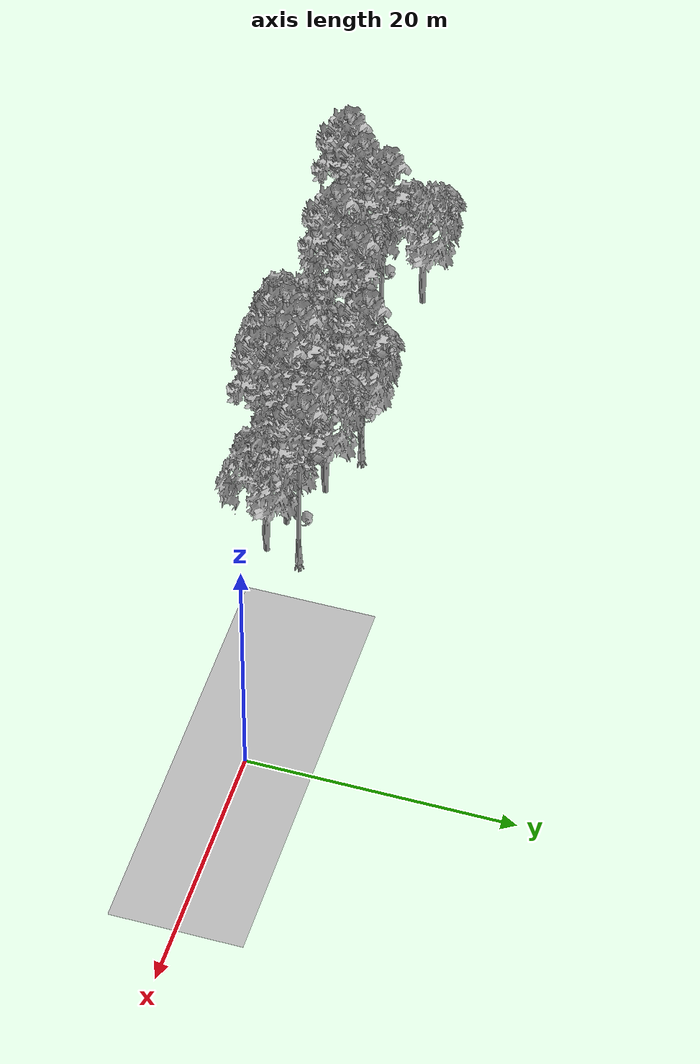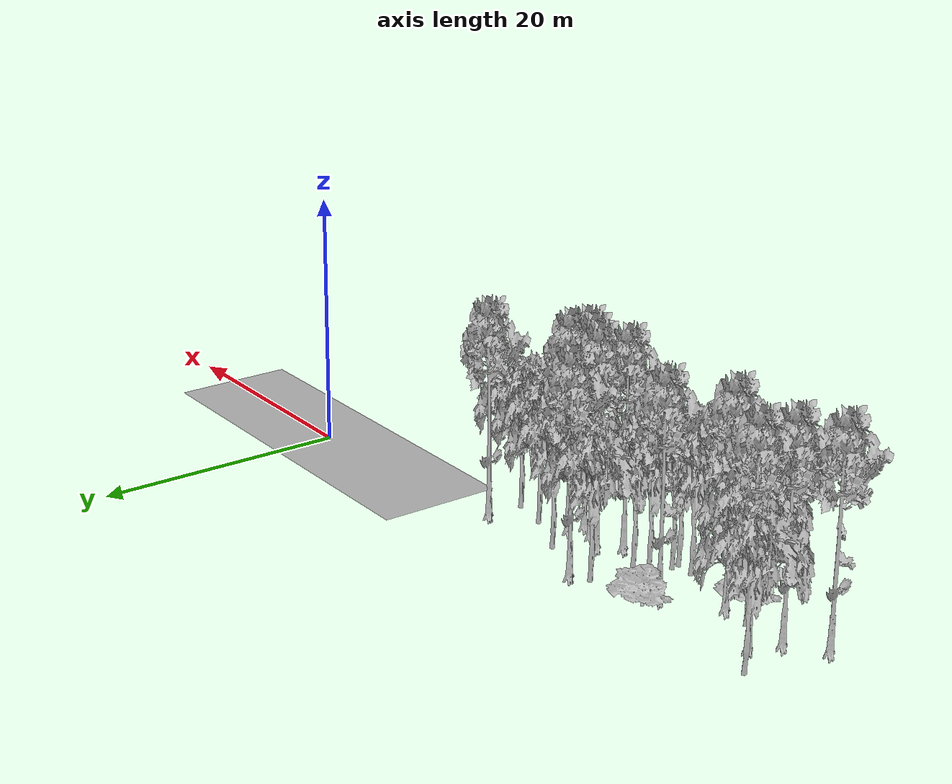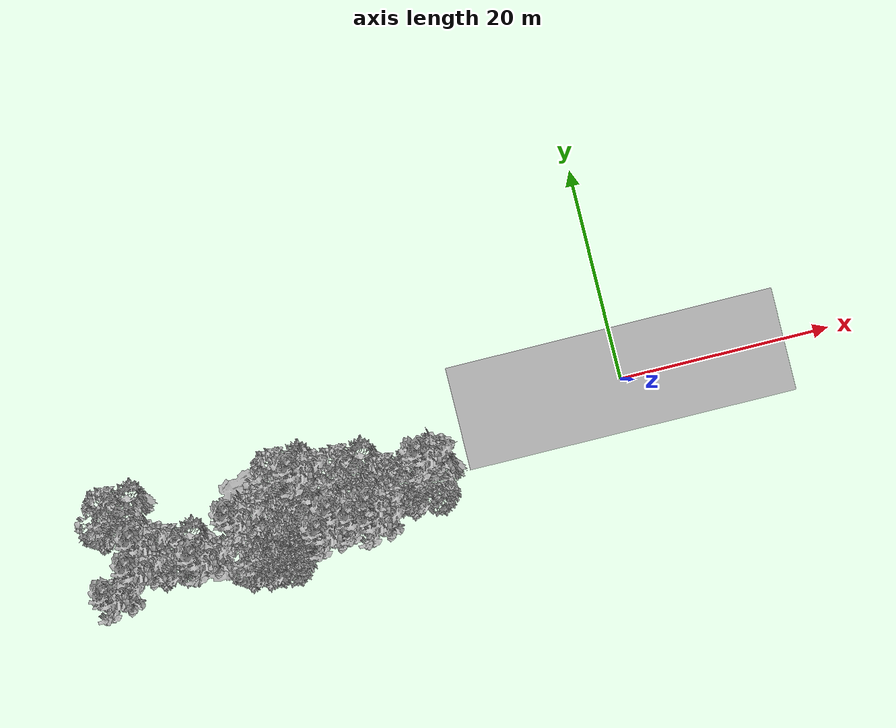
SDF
<sdf version="1.7">
 <world name="default">
  <model name="ground_plane">
   <static>1</static>
   <link name="link">
    <collision name="collision">
     <pose>-50 0 0 0 -0 0</pose>
     <geometry><plane><normal>0 0 1</normal><size>100 100</size></plane></geometry>
     <surface><contact><ode><min_depth>0.01</min_depth><max_vel>0</max_vel></ode></contact></surface>
    </collision>
    <visual name="grass">
     <cast_shadows>0</cast_shadows>
     <geometry>
      <mesh>
       <scale>0.5814285714285714 0.18142857142857144 0.1</scale>
       <uri>file://grass_plane/meshes/grass_plane.dae</uri>
      </mesh>
     </geometry>
    </visual>
   </link>
  </model>
  <model name="Tree 20">
   <static>1</static>
   <pose>-24.720509356675365 -6.560467251138821 0 1.57079 -0 0</pose>
   <link name="link">
    <collision name="collision">
     <geometry><mesh><scale>3.5 5 3.5</scale><uri>model://tree_9/meshes/tree_9.obj</uri></mesh></geometry>
    </collision>
    <visual name="visual">
     <geometry><mesh><scale>3.5 5 3.5</scale><uri>model://tree_9/meshes/tree_9.obj</uri></mesh></geometry>
    </visual>
   </link>
  </model>
  <model name="Tree 30">
   <static>1</static>
   <pose>-36.678549349047785 -1.8676654254299443 0 1.57079 -0 0</pose>
   <link name="link">
    <collision name="collision">
     <geometry><mesh><scale>3 2 3</scale><uri>model://tree_3/meshes/tree_3.obj</uri></mesh></geometry>
    </collision>
    <visual name="visual">
     <geometry><mesh><scale>3 2 3</scale><uri>model://tree_3/meshes/tree_3.obj</uri></mesh></geometry>
    </visual>
   </link>
  </model>
  <model name="Tree 61">
   <static>1</static>
   <pose>-32.130623377015894 -1.154115516390199 0 1.57079 -0 0</pose>
   <link name="link">
    <collision name="collision">
     <geometry><mesh><scale>3.5 5 3.5</scale><uri>model://tree_2/meshes/tree_2.obj</uri></mesh></geometry>
    </collision>
    <visual name="visual">
     <geometry><mesh><scale>3.5 5 3.5</scale><uri>model://tree_2/meshes/tree_2.obj</uri></mesh></geometry>
    </visual>
   </link>
  </model>
  <model name="Tree 68">
   <static>1</static>
   <pose>-45.25607261044431 -3.4985982505769524 0 1.57079 -0 0</pose>
   <link name="link">
    <collision name="collision">
     <geometry><mesh><scale>3.5 5 3.5</scale><uri>model://tree_9/meshes/tree_9.obj</uri></mesh></geometry>
    </collision>
    <visual name="visual">
     <geometry><mesh><scale>3.5 5 3.5</scale><uri>model://tree_9/meshes/tree_9.obj</uri></mesh></geometry>
    </visual>
   </link>
  </model>
  <model name="Tree 71">
   <static>1</static>
   <pose>-33.88990737447455 -7.730477515584562 0 1.57079 -0 0</pose>
   <link name="link">
    <collision name="collision">
     <geometry><mesh><scale>3.5 5 3.5</scale><uri>model://tree_2/meshes/tree_2.obj</uri></mesh></geometry>
    </collision>
    <visual name="visual">
     <geometry><mesh><scale>3.5 5 3.5</scale><uri>model://tree_2/meshes/tree_2.obj</uri></mesh></geometry>
    </visual>
   </link>
  </model>
  <model name="Tree 83">
   <static>1</static>
   <pose>-24.512632264914842 -5.198882368516241 0 1.57079 -0 0</pose>
   <link name="link">
    <collision name="collision">
     <geometry><mesh><scale>3.5 5 3.5</scale><uri>model://tree_9/meshes/tree_9.obj</uri></mesh></geometry>
    </collision>
    <visual name="visual">
     <geometry><mesh><scale>3.5 5 3.5</scale><uri>model://tree_9/meshes/tree_9.obj</uri></mesh></geometry>
    </visual>
   </link>
  </model>
  <model name="Tree 130">
   <static>1</static>
   <pose>-32.139759217933246 -5.042633922600244 0 1.57079 -0 0</pose>
   <link name="link">
    <collision name="collision">
     <geometry><mesh><scale>3.5 5 3.5</scale><uri>model://tree_2/meshes/tree_2.obj</uri></mesh></geometry>
    </collision>
    <visual name="visual">
     <geometry><mesh><scale>3.5 5 3.5</scale><uri>model://tree_2/meshes/tree_2.obj</uri></mesh></geometry>
    </visual>
   </link>
  </model>
  <model name="Tree 133">
   <static>1</static>
   <pose>-33.04641503710804 -5.715246516989618 0 1.57079 -0 0</pose>
   <link name="link">
    <collision name="collision">
     <geometry><mesh><scale>3.5 5 3.5</scale><uri>model://tree_2/meshes/tree_2.obj</uri></mesh></geometry>
    </collision>
    <visual name="visual">
     <geometry><mesh><scale>3.5 5 3.5</scale><uri>model://tree_2/meshes/tree_2.obj</uri></mesh></geometry>
    </visual>
   </link>
  </model>
  <model name="Tree 143">
   <static>1</static>
   <pose>-46.16497024358091 -5.687213251040905 0 1.57079 -0 0</pose>
   <link name="link">
    <collision name="collision">
     <geometry><mesh><scale>3.5 5 3.5</scale><uri>model://tree_9/meshes/tree_9.obj</uri></mesh></geometry>
    </collision>
    <visual name="visual">
     <geometry><mesh><scale>3.5 5 3.5</scale><uri>model://tree_9/meshes/tree_9.obj</uri></mesh></geometry>
    </visual>
   </link>
  </model>
  <model name="Tree 168">
   <static>1</static>
   <pose>-40.35901055958775 -6.05732687967188 0 1.57079 -0 0</pose>
   <link name="link">
    <collision name="collision">
     <geometry><mesh><scale>3.5 5 3.5</scale><uri>model://tree_9/meshes/tree_9.obj</uri></mesh></geometry>
    </collision>
    <visual name="visual">
     <geometry><mesh><scale>3.5 5 3.5</scale><uri>model://tree_9/meshes/tree_9.obj</uri></mesh></geometry>
    </visual>
   </link>
  </model>
  <model name="Tree 170">
   <static>1</static>
   <pose>-43.055245638578185 -5.516690120104679 0 1.57079 -0 0</pose>
   <link name="link">
    <collision name="collision">
     <geometry><mesh><scale>3.5 5 3.5</scale><uri>model://tree_2/meshes/tree_2.obj</uri></mesh></geometry>
    </collision>
    <visual name="visual">
     <geometry><mesh><scale>3.5 5 3.5</scale><uri>model://tree_2/meshes/tree_2.obj</uri></mesh></geometry>
    </visual>
   </link>
  </model>
  <model name="Tree 174">
   <static>1</static>
   <pose>-26.24857689715318 -5.893427659503294 0 1.57079 -0 0</pose>
   <link name="link">
    <collision name="collision">
     <geometry><mesh><scale>3.5 5 3.5</scale><uri>model://tree_9/meshes/tree_9.obj</uri></mesh></geometry>
    </collision>
    <visual name="visual">
     <geometry><mesh><scale>3.5 5 3.5</scale><uri>model://tree_9/meshes/tree_9.obj</uri></mesh></geometry>
    </visual>
   </link>
  </model>
  <model name="Tree 194">
   <static>1</static>
   <pose>-29.214685603027668 -6.519090323049321 0 1.57079 -0 0</pose>
   <link name="link">
    <collision name="collision">
     <geometry><mesh><scale>3.5 5 3.5</scale><uri>model://tree_9/meshes/tree_9.obj</uri></mesh></geometry>
    </collision>
    <visual name="visual">
     <geometry><mesh><scale>3.5 5 3.5</scale><uri>model://tree_9/meshes/tree_9.obj</uri></mesh></geometry>
    </visual>
   </link>
  </model>
  <model name="Tree 213">
   <static>1</static>
   <pose>-36.67614854581817 -3.3540162433122855 0 1.57079 -0 0</pose>
   <link name="link">
    <collision name="collision">
     <geometry><mesh><scale>3.5 5 3.5</scale><uri>model://tree_9/meshes/tree_9.obj</uri></mesh></geometry>
    </collision>
    <visual name="visual">
     <geometry><mesh><scale>3.5 5 3.5</scale><uri>model://tree_9/meshes/tree_9.obj</uri></mesh></geometry>
    </visual>
   </link>
  </model>
  <model name="Tree 222">
   <static>1</static>
   <pose>-19.693165493879448 -4.638666068134077 0 1.57079 -0 0</pose>
   <link name="link">
    <collision name="collision">
     <geometry><mesh><scale>3.5 5 3.5</scale><uri>model://tree_2/meshes/tree_2.obj</uri></mesh></geometry>
    </collision>
    <visual name="visual">
     <geometry><mesh><scale>3.5 5 3.5</scale><uri>model://tree_2/meshes/tree_2.obj</uri></mesh></geometry>
    </visual>
   </link>
  </model>
  <model name="Tree 225">
   <static>1</static>
   <pose>-48.61291573614705 -7.5304690520506234 0 1.57079 -0 0</pose>
   <link name="link">
    <collision name="collision">
     <geometry><mesh><scale>3.5 5 3.5</scale><uri>model://tree_9/meshes/tree_9.obj</uri></mesh></geometry>
    </collision>
    <visual name="visual">
     <geometry><mesh><scale>3.5 5 3.5</scale><uri>model://tree_9/meshes/tree_9.obj</uri></mesh></geometry>
    </visual>
   </link>
  </model>
  <model name="Tree 226">
   <static>1</static>
   <pose>-27.93112716458921 -5.051334612885324 0 1.57079 -0 0</pose>
   <link name="link">
    <collision name="collision">
     <geometry><mesh><scale>3.5 5 3.5</scale><uri>model://tree_9/meshes/tree_9.obj</uri></mesh></geometry>
    </collision>
    <visual name="visual">
     <geometry><mesh><scale>3.5 5 3.5</scale><uri>model://tree_9/meshes/tree_9.obj</uri></mesh></geometry>
    </visual>
   </link>
  </model>
  <model name="Tree 231">
   <static>1</static>
   <pose>-30.397660748635282 -0.5964867677042651 0 1.57079 -0 0</pose>
   <link name="link">
    <collision name="collision">
     <geometry><mesh><scale>3.5 5 3.5</scale><uri>model://tree_9/meshes/tree_9.obj</uri></mesh></geometry>
    </collision>
    <visual name="visual">
     <geometry><mesh><scale>3.5 5 3.5</scale><uri>model://tree_9/meshes/tree_9.obj</uri></mesh></geometry>
    </visual>
   </link>
  </model>
  <model name="Tree 234">
   <static>1</static>
   <pose>-40.799048093830656 -7.928569153739151 0 1.57079 -0 0</pose>
   <link name="link">
    <collision name="collision">
     <geometry><mesh><scale>3 2 3</scale><uri>model://tree_3/meshes/tree_3.obj</uri></mesh></geometry>
    </collision>
    <visual name="visual">
     <geometry><mesh><scale>3 2 3</scale><uri>model://tree_3/meshes/tree_3.obj</uri></mesh></geometry>
    </visual>
   </link>
  </model>
  <model name="Tree 244">
   <static>1</static>
   <pose>-26.53032804450075 -2.237583267098996 0 1.57079 -0 0</pose>
   <link name="link">
    <collision name="collision">
     <geometry><mesh><scale>3.5 5 3.5</scale><uri>model://tree_2/meshes/tree_2.obj</uri></mesh></geometry>
    </collision>
    <visual name="visual">
     <geometry><mesh><scale>3.5 5 3.5</scale><uri>model://tree_2/meshes/tree_2.obj</uri></mesh></geometry>
    </visual>
   </link>
  </model>
  <model name="Tree 247">
   <static>1</static>
   <pose>-47.725923921082355 -0.9349406953606643 0 1.57079 -0 0</pose>
   <link name="link">
    <collision name="collision">
     <geometry><mesh><scale>3.5 5 3.5</scale><uri>model://tree_2/meshes/tree_2.obj</uri></mesh></geometry>
    </collision>
    <visual name="visual">
     <geometry><mesh><scale>3.5 5 3.5</scale><uri>model://tree_2/meshes/tree_2.obj</uri></mesh></geometry>
    </visual>
   </link>
  </model>
  <model name="Tree 263">
   <static>1</static>
   <pose>-33.96441064789243 -7.065861478532591 0 1.57079 -0 0</pose>
   <link name="link">
    <collision name="collision">
     <geometry><mesh><scale>3.5 5 3.5</scale><uri>model://tree_2/meshes/tree_2.obj</uri></mesh></geometry>
    </collision>
    <visual name="visual">
     <geometry><mesh><scale>3.5 5 3.5</scale><uri>model://tree_2/meshes/tree_2.obj</uri></mesh></geometry>
    </visual>
   </link>
  </model>
  <model name="Tree 273">
   <static>1</static>
   <pose>-35.4394373206532 -7.504221371774374 0 1.57079 -0 0</pose>
   <link name="link">
    <collision name="collision">
     <geometry><mesh><scale>3.5 5 3.5</scale><uri>model://tree_2/meshes/tree_2.obj</uri></mesh></geometry>
    </collision>
    <visual name="visual">
     <geometry><mesh><scale>3.5 5 3.5</scale><uri>model://tree_2/meshes/tree_2.obj</uri></mesh></geometry>
    </visual>
   </link>
  </model>
  <model name="Tree 293">
   <static>1</static>
   <pose>-22.648070101308395 -4.027595025973589 0 1.57079 -0 0</pose>
   <link name="link">
    <collision name="collision">
     <geometry><mesh><scale>3.5 5 3.5</scale><uri>model://tree_2/meshes/tree_2.obj</uri></mesh></geometry>
    </collision>
    <visual name="visual">
     <geometry><mesh><scale>3.5 5 3.5</scale><uri>model://tree_2/meshes/tree_2.obj</uri></mesh></geometry>
    </visual>
   </link>
  </model>
  <model name="Tree 294">
   <static>1</static>
   <pose>-19.113279964314717 -1.982376324890195 0 1.57079 -0 0</pose>
   <link name="link">
    <collision name="collision">
     <geometry><mesh><scale>3.5 5 3.5</scale><uri>model://tree_9/meshes/tree_9.obj</uri></mesh></geometry>
    </collision>
    <visual name="visual">
     <geometry><mesh><scale>3.5 5 3.5</scale><uri>model://tree_9/meshes/tree_9.obj</uri></mesh></geometry>
    </visual>
   </link>
  </model>
 </world>
</sdf>
